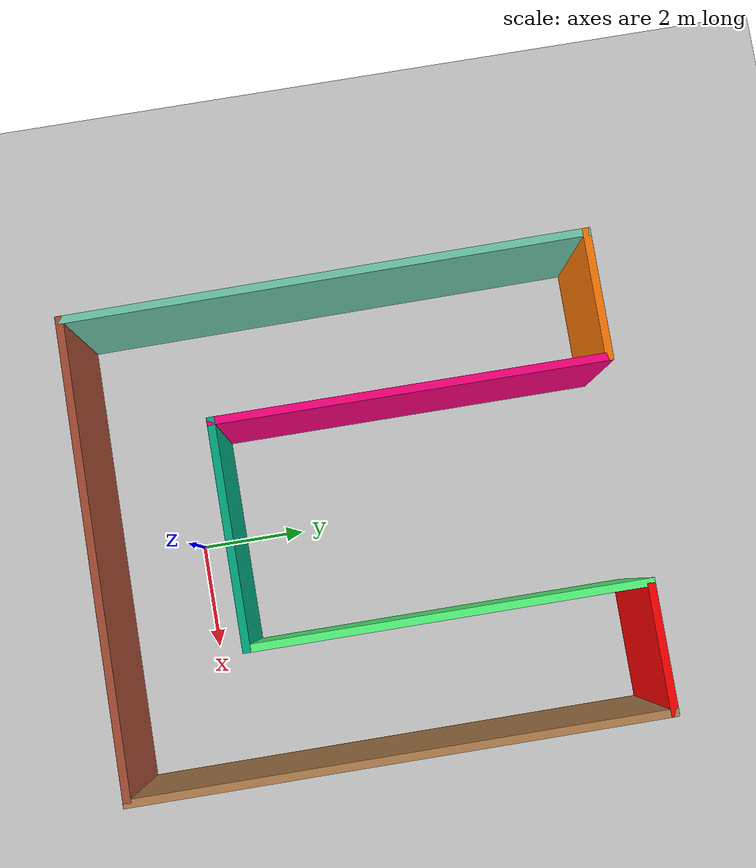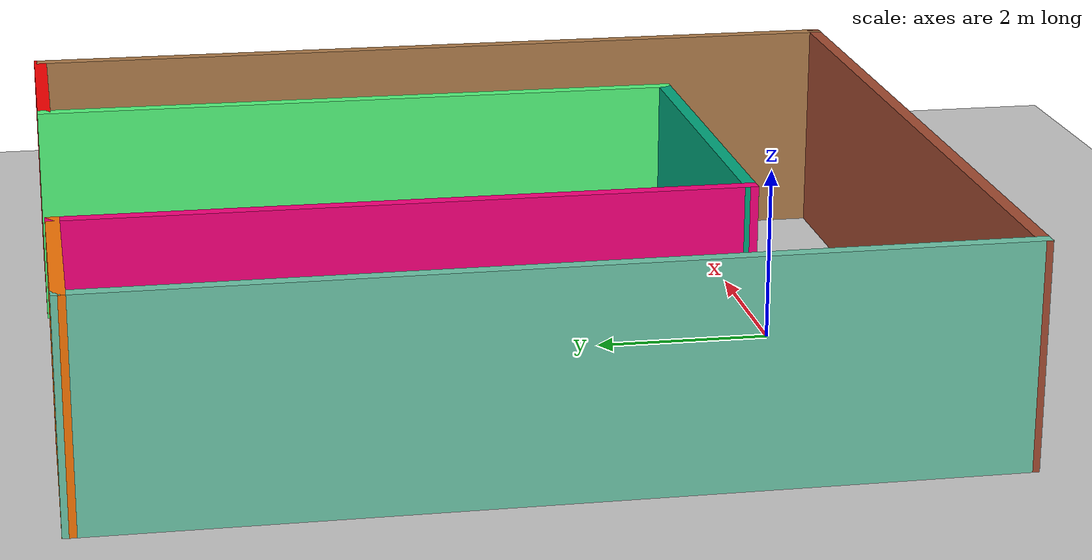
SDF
<sdf version="1.6">
 <world name="default">
  <light name="sun" type="directional">
   <pose>0 0 15 0 -0 0</pose>
   <diffuse>1 1 1 1</diffuse>
   <specular>0.1 0.1 0.1 1</specular>
   <attenuation>
    <range>1000</range>
    <constant>0.9</constant>
    <linear>0.01</linear>
    <quadratic>0.001</quadratic>
   </attenuation>
   <direction>-0.5 0.5 -1</direction>
  </light>
  <model name="ground_plane">
   <static>1</static>
   <link name="link">
    <collision name="collision">
     <geometry><plane><normal>0 0 1</normal><size>100 100</size></plane></geometry>
     <surface><friction><ode><mu>100</mu><mu2>50</mu2></ode></friction></surface>
    </collision>
    <visual name="visual">
     <transparency>1</transparency>
     <cast_shadows>0</cast_shadows>
     <geometry><plane><normal>0 0 1</normal><size>100 100</size></plane></geometry>
     <material>
      <script><uri>file://media/materials/scripts/gazebo.material</uri><name>Gazebo/Grey</name></script>
     </material>
    </visual>
   </link>
  </model>
  <gravity>0 0 -9.8</gravity>
  <magnetic_field>6e-06 2.3e-05 -4.2e-05</magnetic_field>
  <atmosphere type="adiabatic"/>
  <physics name="default_physics" default="0" type="ode">
   <max_step_size>0.001</max_step_size>
   <real_time_factor>1</real_time_factor>
   <real_time_update_rate>1000</real_time_update_rate>
  </physics>
  <scene><ambient>0.4 0.4 0.4 1</ambient><background>0.7 0.7 0.7 1</background><shadows>1</shadows></scene>
  <spherical_coordinates>
   <surface_model>EARTH_WGS84</surface_model>
   <latitude_deg>0</latitude_deg>
   <longitude_deg>0</longitude_deg>
   <elevation>0</elevation>
   <heading_deg>0</heading_deg>
  </spherical_coordinates>
  <model name="umap">
   <pose>-0.013172 3.22401 0 0 -0 0</pose>
   <link name="Wall_10">
    <collision name="Wall_10_Collision">
     <geometry><box><size>10 0.15 2.5</size></box></geometry>
     <pose>0 0 1.25 0 -0 0</pose>
    </collision>
    <visual name="Wall_10_Visual">
     <pose>0 0 1.25 0 -0 0</pose>
     <geometry><box><size>10 0.15 2.5</size></box></geometry>
     <material>
      <script><uri>file://media/materials/scripts/gazebo.material</uri><name>Gazebo/Wood</name></script>
      <ambient>0 0 0.498039 1</ambient>
     </material>
    </visual>
    <pose>4.43093 0.000199 0 0 0 -1.5708</pose>
   </link>
   <link name="Wall_11">
    <collision name="Wall_11_Collision">
     <geometry><box><size>8.924 0.15 2.5</size></box></geometry>
     <pose>0 0 1.25 0 -0 0</pose>
    </collision>
    <visual name="Wall_11_Visual">
     <pose>0 0 1.25 0 -0 0</pose>
     <geometry><box><size>8.924 0.15 2.5</size></box></geometry>
     <material>
      <script><uri>file://media/materials/scripts/gazebo.material</uri><name>Gazebo/Bricks</name></script>
      <ambient>1 1 0 1</ambient>
     </material>
    </visual>
    <pose>0.020599 -4.90141 0 0 -0 3.13626</pose>
   </link>
   <link name="Wall_12">
    <collision name="Wall_12_Collision">
     <geometry><box><size>9.94893 0.15 2.5</size></box></geometry>
     <pose>0 0 1.25 0 -0 0</pose>
    </collision>
    <visual name="Wall_12_Visual">
     <pose>0 0 1.25 0 -0 0</pose>
     <geometry><box><size>9.94893 0.15 2.5</size></box></geometry>
     <material>
      <script><uri>file://media/materials/scripts/gazebo.material</uri><name>Gazebo/Grey</name></script>
      <ambient>0.435294 0.796078 0.67451 1</ambient>
     </material>
    </visual>
    <pose>-4.39839 0.021347 0 0 -0 1.57734</pose>
   </link>
   <link name="Wall_5">
    <collision name="Wall_5_Collision">
     <geometry><box><size>2.5 0.15 2.5</size></box></geometry>
     <pose>0 0 1.25 0 -0 0</pose>
    </collision>
    <visual name="Wall_5_Visual">
     <pose>0 0 1.25 0 -0 0</pose>
     <geometry><box><size>2.5 0.15 2.5</size></box></geometry>
     <material>
      <script><uri>file://media/materials/scripts/gazebo.material</uri><name>Gazebo/Grey</name></script>
      <ambient>0.996078 0.47451 0.0196078 1</ambient>
     </material>
    </visual>
    <pose>-3.25548 4.92071 0 0 -0 0</pose>
   </link>
   <link name="Wall_6">
    <collision name="Wall_6_Collision">
     <geometry><box><size>7.5 0.15 2.5</size></box></geometry>
     <pose>0 0 1.25 0 -0 0</pose>
    </collision>
    <visual name="Wall_6_Visual">
     <pose>0 0 1.25 0 -0 0</pose>
     <geometry><box><size>7.5 0.15 2.5</size></box></geometry>
     <material>
      <script><uri>file://media/materials/scripts/gazebo.material</uri><name>Gazebo/Grey</name></script>
      <ambient>1 0 0.498039 1</ambient>
     </material>
    </visual>
    <pose>-2.08048 1.24571 0 0 0 -1.5708</pose>
   </link>
   <link name="Wall_7">
    <collision name="Wall_7_Collision">
     <geometry><box><size>4.31141 0.15 2.5</size></box></geometry>
     <pose>0 0 1.25 0 -0 0</pose>
    </collision>
    <visual name="Wall_7_Visual">
     <pose>0 0 1.25 0 -0 0</pose>
     <geometry><box><size>4.31141 0.15 2.5</size></box></geometry>
     <material>
      <script><uri>file://media/materials/scripts/gazebo.material</uri><name>Gazebo/Grey</name></script>
      <ambient>0 0.666667 0.498039 1</ambient>
     </material>
    </visual>
    <pose>0.000227 -2.42705 0 0 -0 0.00108</pose>
   </link>
   <link name="Wall_8">
    <collision name="Wall_8_Collision">
     <geometry><box><size>7.5 0.15 2.5</size></box></geometry>
     <pose>0 0 1.25 0 -0 0</pose>
    </collision>
    <visual name="Wall_8_Visual">
     <pose>0 0 1.25 0 -0 0</pose>
     <geometry><box><size>7.5 0.15 2.5</size></box></geometry>
     <material>
      <script><uri>file://media/materials/scripts/gazebo.material</uri><name>Gazebo/Grey</name></script>
      <ambient>0.333333 1 0.498039 1</ambient>
     </material>
    </visual>
    <pose>2.08093 1.2502 0 0 -0 1.5708</pose>
   </link>
   <link name="Wall_9">
    <collision name="Wall_9_Collision">
     <geometry><box><size>2.5 0.15 2.5</size></box></geometry>
     <pose>0 0 1.25 0 -0 0</pose>
    </collision>
    <visual name="Wall_9_Visual">
     <pose>0 0 1.25 0 -0 0</pose>
     <geometry><box><size>2.5 0.15 2.5</size></box></geometry>
     <material>
      <script><uri>file://media/materials/scripts/gazebo.material</uri><name>Gazebo/Grey</name></script>
      <ambient>1 0 0 1</ambient>
     </material>
    </visual>
    <pose>3.25593 4.9252 0 0 -0 0</pose>
   </link>
   <static>1</static>
  </model>
 </world>
</sdf>
